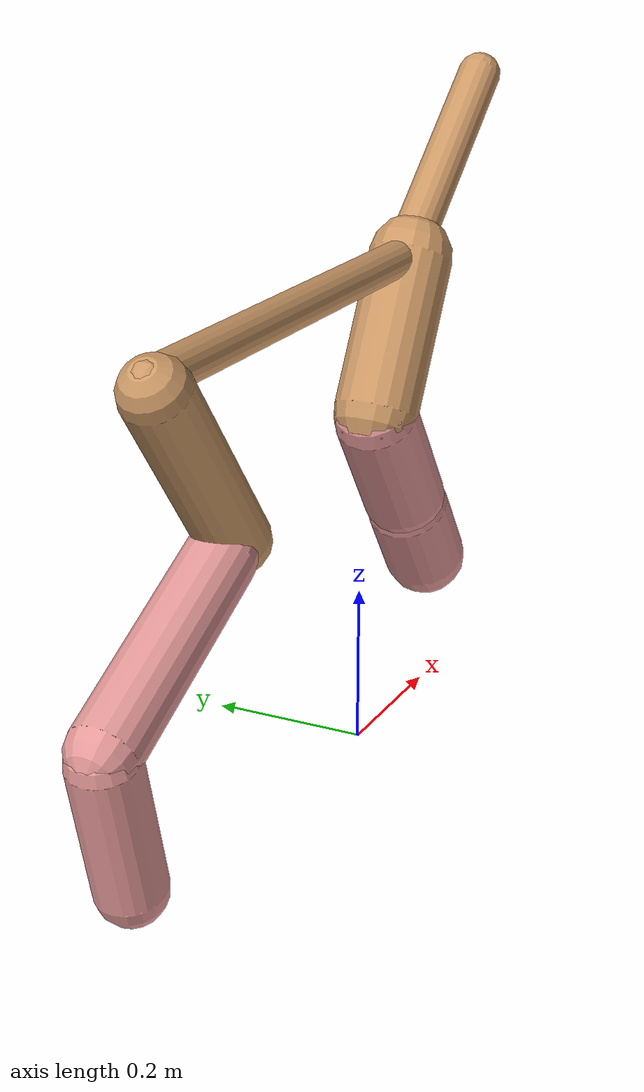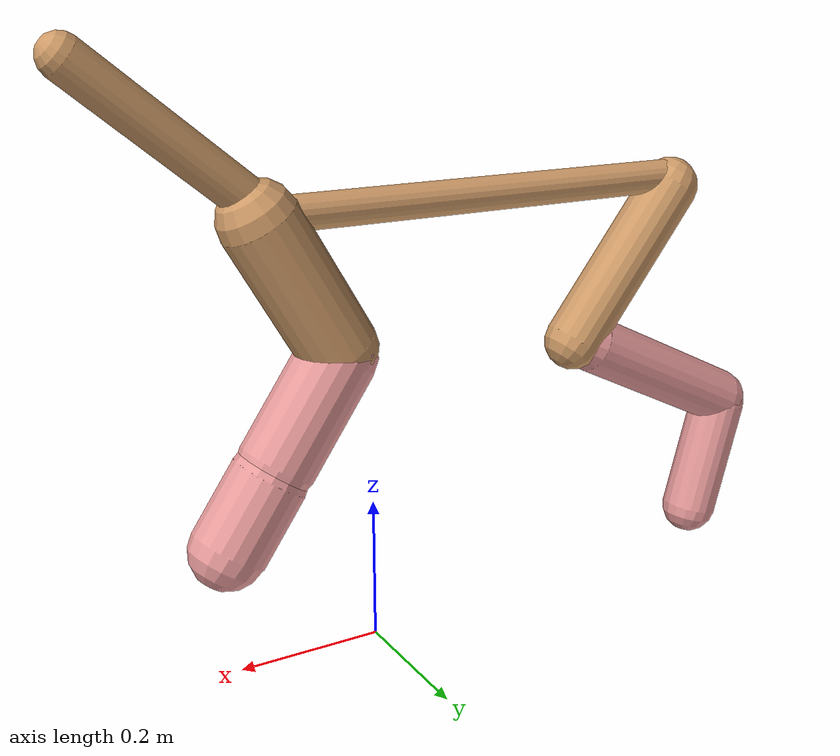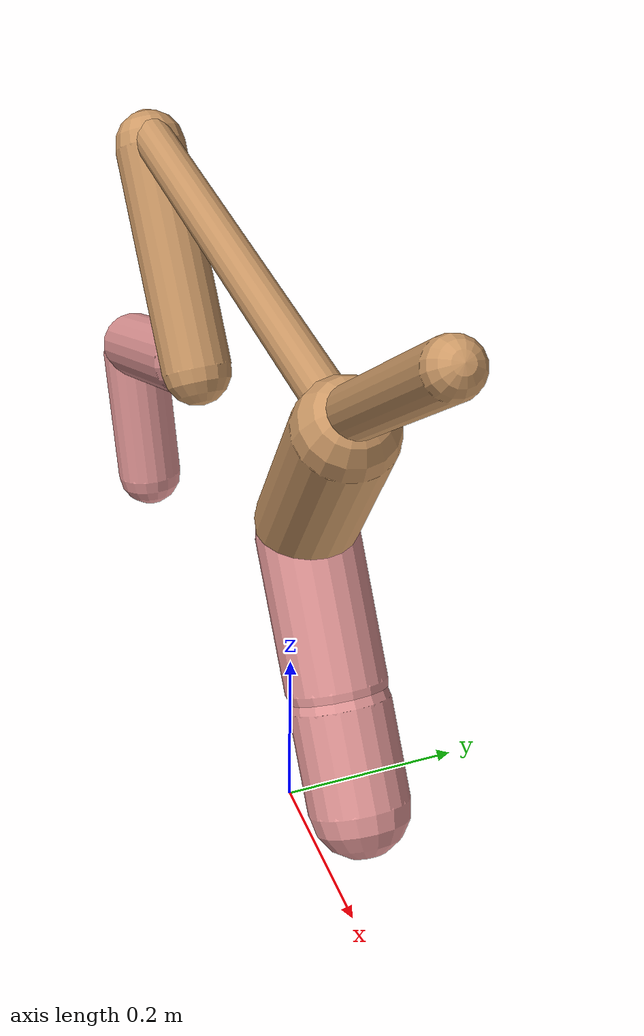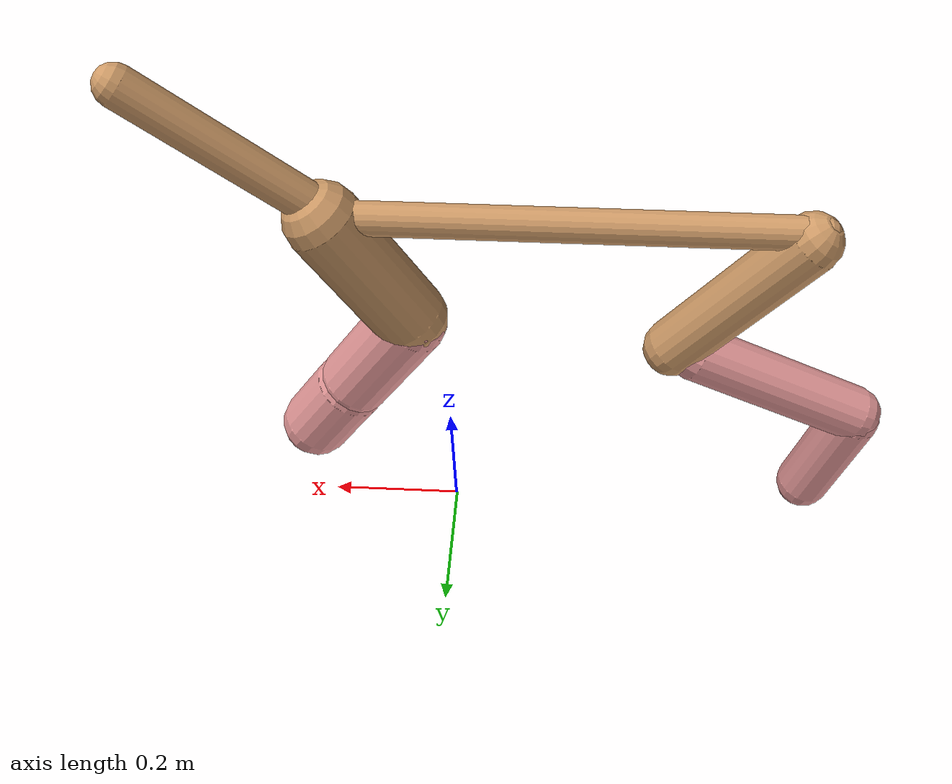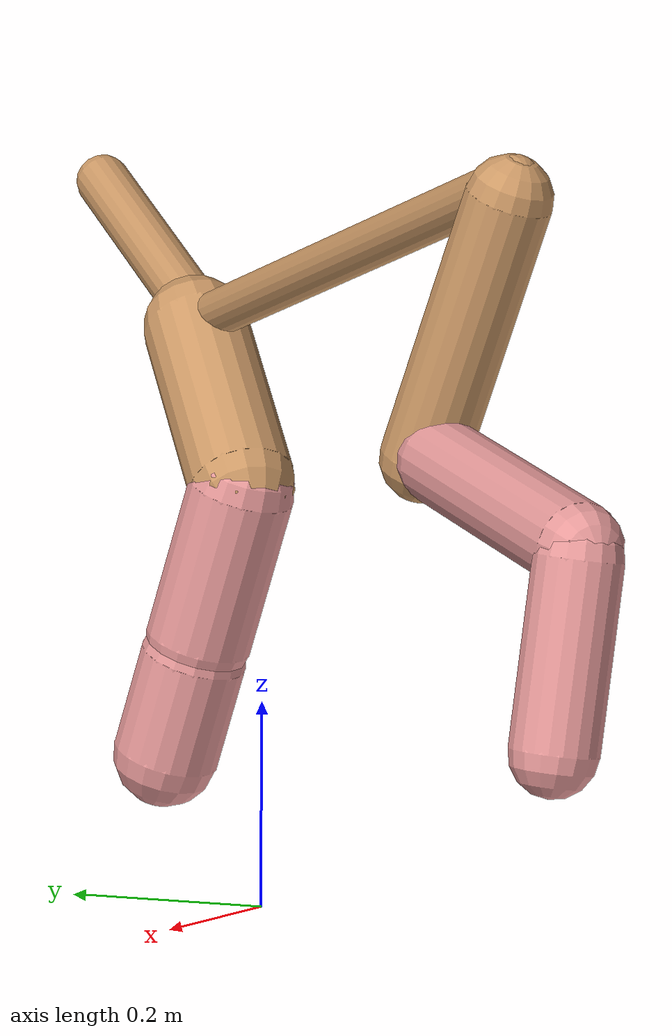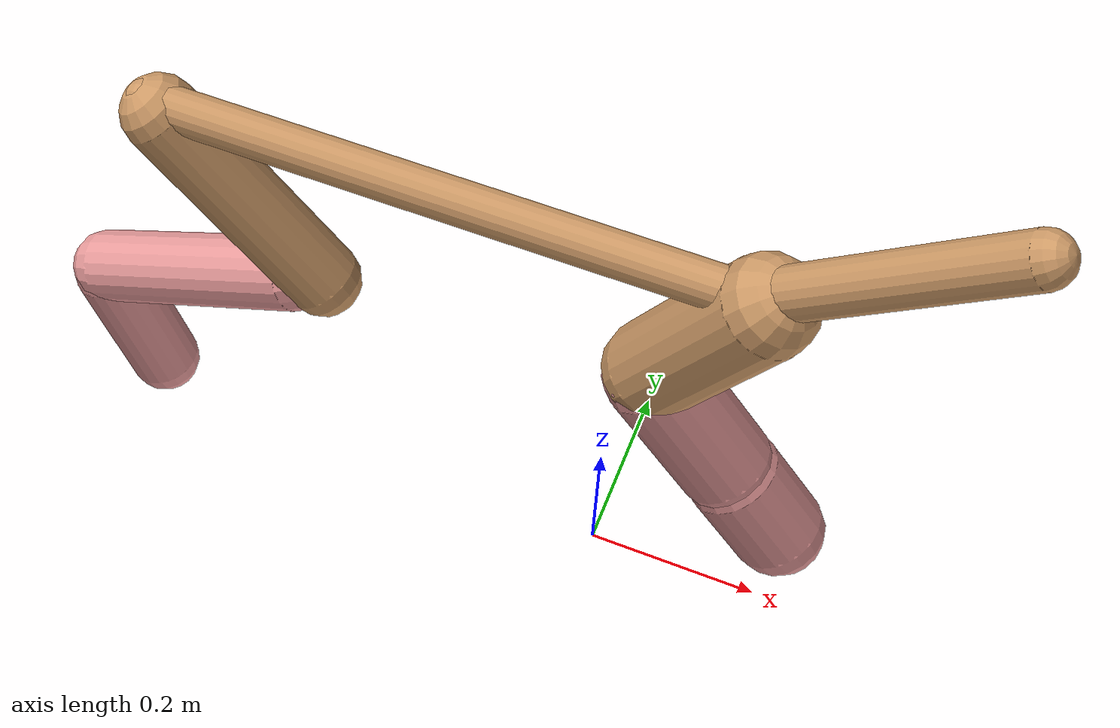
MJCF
<mujoco model="cheetah">
  <compiler angle="radian" coordinate="local" inertiafromgeom="true" settotalmass="14" />
  <default>
    <joint armature=".1" damping=".01" limited="true" solimplimit="0 .8 .03" solreflimit=".02 1" stiffness="8" />
    <geom conaffinity="0" condim="3" contype="1" friction="0.8 .1 .1" rgba="0.8 0.6 .4 1" solimp="0.0 0.8 0.01" solref="0.02 1" />
    <motor ctrllimited="true" ctrlrange="-1 1" />
  </default>
  <size nstack="300000" nuser_geom="1" />
  <option gravity="0 0 -9.81" timestep="0.01" />
  <worldbody>
    <body name="torso" pos="0.0 0.0 0.6069679677028343">
      <joint armature="0" axis="1 0 0" damping="0" limited="false" name="ignorex" pos="0 0 0" stiffness="0" type="slide" />
      <joint armature="0" axis="0 0 1" damping="0" limited="false" name="ignorez" pos="0 0 0" stiffness="0" type="slide" />
      <joint armature="0" axis="0 1 0" damping="0" limited="false" name="ignorey" pos="0 0 0" stiffness="0" type="hinge" />
      <geom fromto="-0.5 0.0 0.0 0.15046296567375317 0.0 0.0" name="torso" size="0.023472696393518268" type="capsule" />
      <geom axisangle="0 1 0 .87" name="head" pos="0.25046296567375315 0.0 0.1" size="0.027936812561804202 0.15" type="capsule" />

      <body name="bthigh" pos="-.5 0 0">
        <joint axis="0 1 0" damping="6" name="bthigh" pos="0 0 0" range="-.52 1.05" stiffness="240" type="hinge" />
        <geom axisangle="0 1 0 -3.8" name="bthigh" pos="0.09302984616667949 0.0 -0.12093880001668333" size="0.041254897341062316 0.13356809772619574" type="capsule" />
        <body name="bshin" pos="0.14605969233335897 0.0 -0.23187760003336666">
          <joint axis="0 1 0" damping="4.5" name="bshin" pos="0 0 0" range="-.785 .785" stiffness="180" type="hinge" />
          <geom axisangle="0 1 0 -2.03" name="bshin" pos="-0.12942240940840247 0.0 -0.06471120470420123" rgba="0.9 0.6 0.6 1" size="0.041254897341062316 0.13817389419951284" type="capsule" />
          <body name="bfoot" pos="-0.25884481881680493 0.0 -0.12942240940840247">
            <joint axis="0 1 0" damping="3" name="bfoot" pos="0 0 0" range="-.4 .785" stiffness="120" type="hinge" />
            <geom axisangle="0 1 0 -.27" name="bfoot" pos="0.02781026611208668 0.0 -0.08991986042908028" rgba="0.9 0.6 0.6 1" size="0.041254897341062316 0.08658897369836138" type="capsule" />
            <inertial mass="10" />
          </body>
        </body>
      </body>
      <body name="fthigh" pos="0.15046296567375317 0.0 0.0">
        <joint axis="0 1 0" damping="4.5" name="fthigh" pos="0 0 0" range="-1.5 0.8" stiffness="180" type="hinge" />
        <geom axisangle="0 1 0 .52" name="fthigh" pos="-0.05461523857672727 0.0 -0.09362612327438959" size="0.053150023181973 0.10246686623373365" type="capsule" />
        <body name="fshin" pos="-0.10923047715345453 0.0 -0.18725224654877917">
          <joint axis="0 1 0" damping="3" name="fshin" pos="0 0 0" range="-1.2 1.1" stiffness="120" type="hinge" />
          <geom axisangle="0 1 0 -.6" name="fshin" pos="0.05075227587715783 0.0 -0.07027238198375699" rgba="0.9 0.6 0.6 1" size="0.053150023181973 0.08166532196072004" type="capsule" />
          <body name="ffoot" pos="0.10150455175431566 0.0 -0.14054476396751397">
            <joint axis="0 1 0" damping="1.5" name="ffoot" pos="0 0 0" range="-3.1 -0.3" stiffness="60" type="hinge" />
            <geom axisangle="0 1 0 -.6" name="ffoot" pos="0.03630998743647418 0.0 -0.05648220267895984" rgba="0.9 0.6 0.6 1" size="0.053150023181973 0.05392992959670192" type="capsule" />
            <inertial mass="10" />
          </body>
        </body>
      </body>
    </body>
  </worldbody>
  <actuator>
    <motor gear="120" joint="bthigh" name="bthigh" />
    <motor gear="90" joint="bshin" name="bshin" />
    <motor gear="60" joint="bfoot" name="bfoot" />
    <motor gear="120" joint="fthigh" name="fthigh" />
    <motor gear="60" joint="fshin" name="fshin" />
    <motor gear="30" joint="ffoot" name="ffoot" />
  </actuator>
</mujoco>
